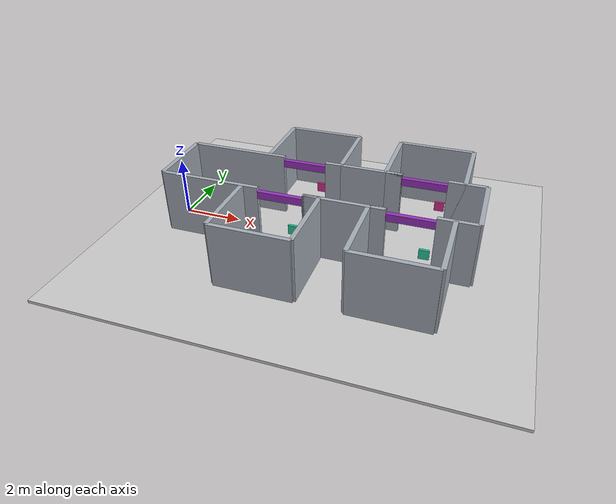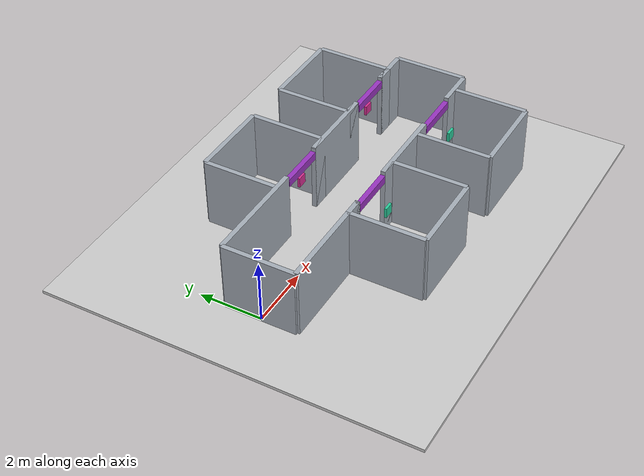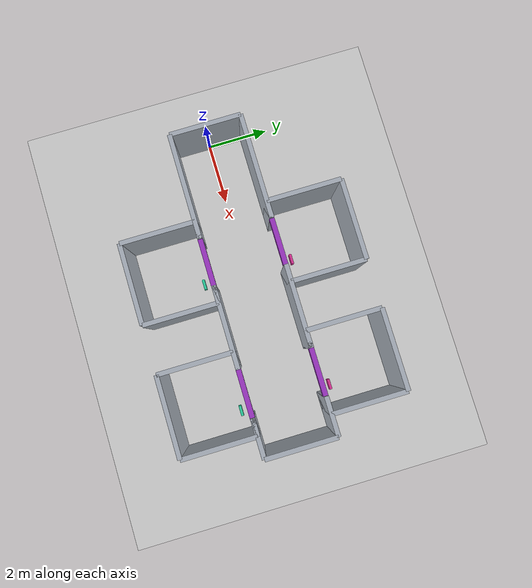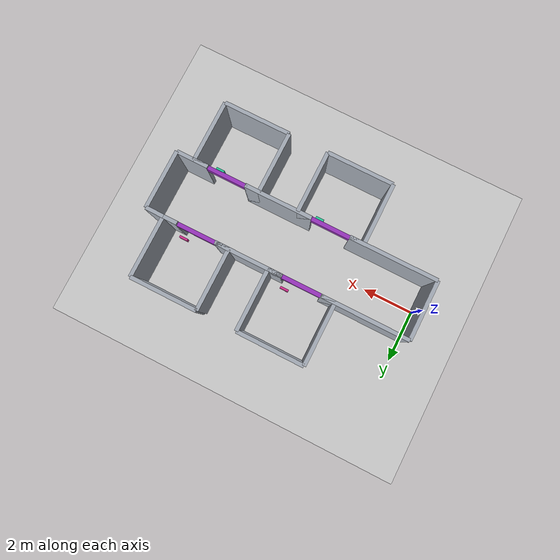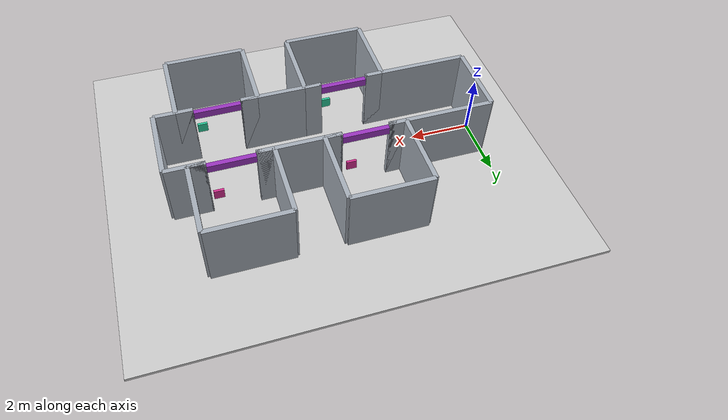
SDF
<sdf version="1.9">
  <world name="default">
    <plugin filename="gz-sim-physics-system" name="gz::sim::systems::Physics" />
    <plugin filename="gz-sim-user-commands-system" name="gz::sim::systems::UserCommands" />
    <plugin filename="gz-sim-sensors-system" name="gz::sim::systems::Sensors">
      <render_engine>ogre2</render_engine>
    </plugin>
    <plugin filename="gz-sim-imu-system" name="gz::sim::systems::Imu" />
    <plugin filename="gz-sim-contact-system" name="gz::sim::systems::Contact" />
    <physics name="3ms" type="ode">
      <max_step_size>0.003</max_step_size>
      <real_time_factor>1</real_time_factor>
    </physics>
    <light name="sun" type="directional">
      <pose>0 0 10 0 0 0</pose>
      <diffuse>0.9 0.9 0.9 1</diffuse>
      <direction>-0.5 0.1 -0.9</direction>
    </light>
    <model name="ground_plane">
      <static>true</static>
      <pose>5.15 0 -0.05 0 0 0</pose>
      <link name="body">
        <collision name="collision">
          <geometry>
            <box>
              <size>14.3 12 0.1</size>
            </box>
          </geometry>
        </collision>
        <visual name="visual">
          <geometry>
            <box>
              <size>14.3 12 0.1</size>
            </box>
          </geometry>
          <material>
            <ambient>0.8 0.8 0.8 1</ambient>
            <diffuse>0.8 0.8 0.8 1</diffuse>
          </material>
        </visual>
      </link>
    </model>
    <model name="start_wall">
      <static>true</static>
      <pose>0 0 1.1 0 0 0</pose>
      <link name="body">
        <collision name="collision">
          <geometry>
            <box>
              <size>0.15 2.3 2.2</size>
            </box>
          </geometry>
        </collision>
        <visual name="visual">
          <geometry>
            <box>
              <size>0.15 2.3 2.2</size>
            </box>
          </geometry>
          <material>
            <ambient>0.65 0.68 0.72 1</ambient>
            <diffuse>0.65 0.68 0.72 1</diffuse>
          </material>
        </visual>
      </link>
    </model>
    <model name="end_wall">
      <static>true</static>
      <pose>10.3 0 1.1 0 0 0</pose>
      <link name="body">
        <collision name="collision">
          <geometry>
            <box>
              <size>0.15 2.3 2.2</size>
            </box>
          </geometry>
        </collision>
        <visual name="visual">
          <geometry>
            <box>
              <size>0.15 2.3 2.2</size>
            </box>
          </geometry>
          <material>
            <ambient>0.65 0.68 0.72 1</ambient>
            <diffuse>0.65 0.68 0.72 1</diffuse>
          </material>
        </visual>
      </link>
    </model>
    <model name="hall_-1_1">
      <static>true</static>
      <pose>1.7000000000000002 -1.15 1.1 0 0 0</pose>
      <link name="body">
        <collision name="collision">
          <geometry>
            <box>
              <size>3.4000000000000004 0.15 2.2</size>
            </box>
          </geometry>
        </collision>
        <visual name="visual">
          <geometry>
            <box>
              <size>3.4000000000000004 0.15 2.2</size>
            </box>
          </geometry>
          <material>
            <ambient>0.65 0.68 0.72 1</ambient>
            <diffuse>0.65 0.68 0.72 1</diffuse>
          </material>
        </visual>
      </link>
    </model>
    <model name="room_-1_1_-1">
      <static>true</static>
      <pose>2.8500000000000005 -2.3499999999999996 1.1 0 0 0</pose>
      <link name="body">
        <collision name="collision">
          <geometry>
            <box>
              <size>0.15 2.4 2.2</size>
            </box>
          </geometry>
        </collision>
        <visual name="visual">
          <geometry>
            <box>
              <size>0.15 2.4 2.2</size>
            </box>
          </geometry>
          <material>
            <ambient>0.65 0.68 0.72 1</ambient>
            <diffuse>0.65 0.68 0.72 1</diffuse>
          </material>
        </visual>
      </link>
    </model>
    <model name="room_-1_1_1">
      <static>true</static>
      <pose>5.45 -2.3499999999999996 1.1 0 0 0</pose>
      <link name="body">
        <collision name="collision">
          <geometry>
            <box>
              <size>0.15 2.4 2.2</size>
            </box>
          </geometry>
        </collision>
        <visual name="visual">
          <geometry>
            <box>
              <size>0.15 2.4 2.2</size>
            </box>
          </geometry>
          <material>
            <ambient>0.65 0.68 0.72 1</ambient>
            <diffuse>0.65 0.68 0.72 1</diffuse>
          </material>
        </visual>
      </link>
    </model>
    <model name="room_end_-1_1">
      <static>true</static>
      <pose>4.15 -3.55 1.1 0 0 0</pose>
      <link name="body">
        <collision name="collision">
          <geometry>
            <box>
              <size>2.6 0.15 2.2</size>
            </box>
          </geometry>
        </collision>
        <visual name="visual">
          <geometry>
            <box>
              <size>2.6 0.15 2.2</size>
            </box>
          </geometry>
          <material>
            <ambient>0.65 0.68 0.72 1</ambient>
            <diffuse>0.65 0.68 0.72 1</diffuse>
          </material>
        </visual>
      </link>
    </model>
    <model name="jamb_-1_1_-1">
      <static>true</static>
      <pose>3.1250000000000004 -1.15 1.1 0 0 0</pose>
      <link name="body">
        <collision name="collision">
          <geometry>
            <box>
              <size>0.55 0.15 2.2</size>
            </box>
          </geometry>
        </collision>
        <visual name="visual">
          <geometry>
            <box>
              <size>0.55 0.15 2.2</size>
            </box>
          </geometry>
          <material>
            <ambient>0.65 0.68 0.72 1</ambient>
            <diffuse>0.65 0.68 0.72 1</diffuse>
          </material>
        </visual>
      </link>
    </model>
    <model name="jamb_-1_1_1">
      <static>true</static>
      <pose>5.175000000000001 -1.15 1.1 0 0 0</pose>
      <link name="body">
        <collision name="collision">
          <geometry>
            <box>
              <size>0.55 0.15 2.2</size>
            </box>
          </geometry>
        </collision>
        <visual name="visual">
          <geometry>
            <box>
              <size>0.55 0.15 2.2</size>
            </box>
          </geometry>
          <material>
            <ambient>0.65 0.68 0.72 1</ambient>
            <diffuse>0.65 0.68 0.72 1</diffuse>
          </material>
        </visual>
      </link>
    </model>
    <model name="hall_-1_2">
      <static>true</static>
      <pose>6.2250000000000005 -1.15 1.1 0 0 0</pose>
      <link name="body">
        <collision name="collision">
          <geometry>
            <box>
              <size>2.6500000000000004 0.15 2.2</size>
            </box>
          </geometry>
        </collision>
        <visual name="visual">
          <geometry>
            <box>
              <size>2.6500000000000004 0.15 2.2</size>
            </box>
          </geometry>
          <material>
            <ambient>0.65 0.68 0.72 1</ambient>
            <diffuse>0.65 0.68 0.72 1</diffuse>
          </material>
        </visual>
      </link>
    </model>
    <model name="room_-1_2_-1">
      <static>true</static>
      <pose>7.000000000000001 -2.3499999999999996 1.1 0 0 0</pose>
      <link name="body">
        <collision name="collision">
          <geometry>
            <box>
              <size>0.15 2.4 2.2</size>
            </box>
          </geometry>
        </collision>
        <visual name="visual">
          <geometry>
            <box>
              <size>0.15 2.4 2.2</size>
            </box>
          </geometry>
          <material>
            <ambient>0.65 0.68 0.72 1</ambient>
            <diffuse>0.65 0.68 0.72 1</diffuse>
          </material>
        </visual>
      </link>
    </model>
    <model name="room_-1_2_1">
      <static>true</static>
      <pose>9.600000000000001 -2.3499999999999996 1.1 0 0 0</pose>
      <link name="body">
        <collision name="collision">
          <geometry>
            <box>
              <size>0.15 2.4 2.2</size>
            </box>
          </geometry>
        </collision>
        <visual name="visual">
          <geometry>
            <box>
              <size>0.15 2.4 2.2</size>
            </box>
          </geometry>
          <material>
            <ambient>0.65 0.68 0.72 1</ambient>
            <diffuse>0.65 0.68 0.72 1</diffuse>
          </material>
        </visual>
      </link>
    </model>
    <model name="room_end_-1_2">
      <static>true</static>
      <pose>8.3 -3.55 1.1 0 0 0</pose>
      <link name="body">
        <collision name="collision">
          <geometry>
            <box>
              <size>2.6 0.15 2.2</size>
            </box>
          </geometry>
        </collision>
        <visual name="visual">
          <geometry>
            <box>
              <size>2.6 0.15 2.2</size>
            </box>
          </geometry>
          <material>
            <ambient>0.65 0.68 0.72 1</ambient>
            <diffuse>0.65 0.68 0.72 1</diffuse>
          </material>
        </visual>
      </link>
    </model>
    <model name="jamb_-1_2_-1">
      <static>true</static>
      <pose>7.275 -1.15 1.1 0 0 0</pose>
      <link name="body">
        <collision name="collision">
          <geometry>
            <box>
              <size>0.55 0.15 2.2</size>
            </box>
          </geometry>
        </collision>
        <visual name="visual">
          <geometry>
            <box>
              <size>0.55 0.15 2.2</size>
            </box>
          </geometry>
          <material>
            <ambient>0.65 0.68 0.72 1</ambient>
            <diffuse>0.65 0.68 0.72 1</diffuse>
          </material>
        </visual>
      </link>
    </model>
    <model name="jamb_-1_2_1">
      <static>true</static>
      <pose>9.325000000000001 -1.15 1.1 0 0 0</pose>
      <link name="body">
        <collision name="collision">
          <geometry>
            <box>
              <size>0.55 0.15 2.2</size>
            </box>
          </geometry>
        </collision>
        <visual name="visual">
          <geometry>
            <box>
              <size>0.55 0.15 2.2</size>
            </box>
          </geometry>
          <material>
            <ambient>0.65 0.68 0.72 1</ambient>
            <diffuse>0.65 0.68 0.72 1</diffuse>
          </material>
        </visual>
      </link>
    </model>
    <model name="hall_end_-1">
      <static>true</static>
      <pose>9.675 -1.15 1.1 0 0 0</pose>
      <link name="body">
        <collision name="collision">
          <geometry>
            <box>
              <size>1.25 0.15 2.2</size>
            </box>
          </geometry>
        </collision>
        <visual name="visual">
          <geometry>
            <box>
              <size>1.25 0.15 2.2</size>
            </box>
          </geometry>
          <material>
            <ambient>0.65 0.68 0.72 1</ambient>
            <diffuse>0.65 0.68 0.72 1</diffuse>
          </material>
        </visual>
      </link>
    </model>
    <model name="hall_1_1">
      <static>true</static>
      <pose>1.7000000000000002 1.15 1.1 0 0 0</pose>
      <link name="body">
        <collision name="collision">
          <geometry>
            <box>
              <size>3.4000000000000004 0.15 2.2</size>
            </box>
          </geometry>
        </collision>
        <visual name="visual">
          <geometry>
            <box>
              <size>3.4000000000000004 0.15 2.2</size>
            </box>
          </geometry>
          <material>
            <ambient>0.65 0.68 0.72 1</ambient>
            <diffuse>0.65 0.68 0.72 1</diffuse>
          </material>
        </visual>
      </link>
    </model>
    <model name="room_1_1_-1">
      <static>true</static>
      <pose>2.8500000000000005 2.3499999999999996 1.1 0 0 0</pose>
      <link name="body">
        <collision name="collision">
          <geometry>
            <box>
              <size>0.15 2.4 2.2</size>
            </box>
          </geometry>
        </collision>
        <visual name="visual">
          <geometry>
            <box>
              <size>0.15 2.4 2.2</size>
            </box>
          </geometry>
          <material>
            <ambient>0.65 0.68 0.72 1</ambient>
            <diffuse>0.65 0.68 0.72 1</diffuse>
          </material>
        </visual>
      </link>
    </model>
    <model name="room_1_1_1">
      <static>true</static>
      <pose>5.45 2.3499999999999996 1.1 0 0 0</pose>
      <link name="body">
        <collision name="collision">
          <geometry>
            <box>
              <size>0.15 2.4 2.2</size>
            </box>
          </geometry>
        </collision>
        <visual name="visual">
          <geometry>
            <box>
              <size>0.15 2.4 2.2</size>
            </box>
          </geometry>
          <material>
            <ambient>0.65 0.68 0.72 1</ambient>
            <diffuse>0.65 0.68 0.72 1</diffuse>
          </material>
        </visual>
      </link>
    </model>
    <model name="room_end_1_1">
      <static>true</static>
      <pose>4.15 3.55 1.1 0 0 0</pose>
      <link name="body">
        <collision name="collision">
          <geometry>
            <box>
              <size>2.6 0.15 2.2</size>
            </box>
          </geometry>
        </collision>
        <visual name="visual">
          <geometry>
            <box>
              <size>2.6 0.15 2.2</size>
            </box>
          </geometry>
          <material>
            <ambient>0.65 0.68 0.72 1</ambient>
            <diffuse>0.65 0.68 0.72 1</diffuse>
          </material>
        </visual>
      </link>
    </model>
    <model name="jamb_1_1_-1">
      <static>true</static>
      <pose>3.1250000000000004 1.15 1.1 0 0 0</pose>
      <link name="body">
        <collision name="collision">
          <geometry>
            <box>
              <size>0.55 0.15 2.2</size>
            </box>
          </geometry>
        </collision>
        <visual name="visual">
          <geometry>
            <box>
              <size>0.55 0.15 2.2</size>
            </box>
          </geometry>
          <material>
            <ambient>0.65 0.68 0.72 1</ambient>
            <diffuse>0.65 0.68 0.72 1</diffuse>
          </material>
        </visual>
      </link>
    </model>
    <model name="jamb_1_1_1">
      <static>true</static>
      <pose>5.175000000000001 1.15 1.1 0 0 0</pose>
      <link name="body">
        <collision name="collision">
          <geometry>
            <box>
              <size>0.55 0.15 2.2</size>
            </box>
          </geometry>
        </collision>
        <visual name="visual">
          <geometry>
            <box>
              <size>0.55 0.15 2.2</size>
            </box>
          </geometry>
          <material>
            <ambient>0.65 0.68 0.72 1</ambient>
            <diffuse>0.65 0.68 0.72 1</diffuse>
          </material>
        </visual>
      </link>
    </model>
    <model name="hall_1_2">
      <static>true</static>
      <pose>6.2250000000000005 1.15 1.1 0 0 0</pose>
      <link name="body">
        <collision name="collision">
          <geometry>
            <box>
              <size>2.6500000000000004 0.15 2.2</size>
            </box>
          </geometry>
        </collision>
        <visual name="visual">
          <geometry>
            <box>
              <size>2.6500000000000004 0.15 2.2</size>
            </box>
          </geometry>
          <material>
            <ambient>0.65 0.68 0.72 1</ambient>
            <diffuse>0.65 0.68 0.72 1</diffuse>
          </material>
        </visual>
      </link>
    </model>
    <model name="room_1_2_-1">
      <static>true</static>
      <pose>7.000000000000001 2.3499999999999996 1.1 0 0 0</pose>
      <link name="body">
        <collision name="collision">
          <geometry>
            <box>
              <size>0.15 2.4 2.2</size>
            </box>
          </geometry>
        </collision>
        <visual name="visual">
          <geometry>
            <box>
              <size>0.15 2.4 2.2</size>
            </box>
          </geometry>
          <material>
            <ambient>0.65 0.68 0.72 1</ambient>
            <diffuse>0.65 0.68 0.72 1</diffuse>
          </material>
        </visual>
      </link>
    </model>
    <model name="room_1_2_1">
      <static>true</static>
      <pose>9.600000000000001 2.3499999999999996 1.1 0 0 0</pose>
      <link name="body">
        <collision name="collision">
          <geometry>
            <box>
              <size>0.15 2.4 2.2</size>
            </box>
          </geometry>
        </collision>
        <visual name="visual">
          <geometry>
            <box>
              <size>0.15 2.4 2.2</size>
            </box>
          </geometry>
          <material>
            <ambient>0.65 0.68 0.72 1</ambient>
            <diffuse>0.65 0.68 0.72 1</diffuse>
          </material>
        </visual>
      </link>
    </model>
    <model name="room_end_1_2">
      <static>true</static>
      <pose>8.3 3.55 1.1 0 0 0</pose>
      <link name="body">
        <collision name="collision">
          <geometry>
            <box>
              <size>2.6 0.15 2.2</size>
            </box>
          </geometry>
        </collision>
        <visual name="visual">
          <geometry>
            <box>
              <size>2.6 0.15 2.2</size>
            </box>
          </geometry>
          <material>
            <ambient>0.65 0.68 0.72 1</ambient>
            <diffuse>0.65 0.68 0.72 1</diffuse>
          </material>
        </visual>
      </link>
    </model>
    <model name="jamb_1_2_-1">
      <static>true</static>
      <pose>7.275 1.15 1.1 0 0 0</pose>
      <link name="body">
        <collision name="collision">
          <geometry>
            <box>
              <size>0.55 0.15 2.2</size>
            </box>
          </geometry>
        </collision>
        <visual name="visual">
          <geometry>
            <box>
              <size>0.55 0.15 2.2</size>
            </box>
          </geometry>
          <material>
            <ambient>0.65 0.68 0.72 1</ambient>
            <diffuse>0.65 0.68 0.72 1</diffuse>
          </material>
        </visual>
      </link>
    </model>
    <model name="jamb_1_2_1">
      <static>true</static>
      <pose>9.325000000000001 1.15 1.1 0 0 0</pose>
      <link name="body">
        <collision name="collision">
          <geometry>
            <box>
              <size>0.55 0.15 2.2</size>
            </box>
          </geometry>
        </collision>
        <visual name="visual">
          <geometry>
            <box>
              <size>0.55 0.15 2.2</size>
            </box>
          </geometry>
          <material>
            <ambient>0.65 0.68 0.72 1</ambient>
            <diffuse>0.65 0.68 0.72 1</diffuse>
          </material>
        </visual>
      </link>
    </model>
    <model name="hall_end_1">
      <static>true</static>
      <pose>9.675 1.15 1.1 0 0 0</pose>
      <link name="body">
        <collision name="collision">
          <geometry>
            <box>
              <size>1.25 0.15 2.2</size>
            </box>
          </geometry>
        </collision>
        <visual name="visual">
          <geometry>
            <box>
              <size>1.25 0.15 2.2</size>
            </box>
          </geometry>
          <material>
            <ambient>0.65 0.68 0.72 1</ambient>
            <diffuse>0.65 0.68 0.72 1</diffuse>
          </material>
        </visual>
      </link>
    </model>
    <model name="r3geo_base_r009_right_1_lintel">
      <static>true</static>
      <pose>4.15 -1.15 1.95 0 0 0</pose>
      <link name="body">
        <collision name="collision">
          <geometry>
            <box>
              <size>1.5 0.16 0.25</size>
            </box>
          </geometry>
        </collision>
        <visual name="visual">
          <geometry>
            <box>
              <size>1.5 0.16 0.25</size>
            </box>
          </geometry>
          <material>
            <ambient>0.6 0.2 0.75 1</ambient>
            <diffuse>0.6 0.2 0.75 1</diffuse>
          </material>
        </visual>
      </link>
    </model>
    <model name="r3geo_base_r009_right_1_entrance_sign">
      <static>true</static>
      <pose>4.680000000000001 -1.45 1.05 0 0 0</pose>
      <link name="body">
        <visual name="visual">
          <geometry>
            <box>
              <size>0.32 0.08 0.32</size>
            </box>
          </geometry>
          <material>
            <ambient>0.16 0.8 0.61 1</ambient>
            <diffuse>0.16 0.8 0.61 1</diffuse>
          </material>
        </visual>
      </link>
    </model>
    <model name="r3geo_base_r009_right_2_lintel">
      <static>true</static>
      <pose>8.3 -1.15 1.95 0 0 0</pose>
      <link name="body">
        <collision name="collision">
          <geometry>
            <box>
              <size>1.5 0.16 0.25</size>
            </box>
          </geometry>
        </collision>
        <visual name="visual">
          <geometry>
            <box>
              <size>1.5 0.16 0.25</size>
            </box>
          </geometry>
          <material>
            <ambient>0.6 0.2 0.75 1</ambient>
            <diffuse>0.6 0.2 0.75 1</diffuse>
          </material>
        </visual>
      </link>
    </model>
    <model name="r3geo_base_r009_right_2_entrance_sign">
      <static>true</static>
      <pose>8.83 -1.45 1.05 0 0 0</pose>
      <link name="body">
        <visual name="visual">
          <geometry>
            <box>
              <size>0.32 0.08 0.32</size>
            </box>
          </geometry>
          <material>
            <ambient>0.16 0.8 0.61 1</ambient>
            <diffuse>0.16 0.8 0.61 1</diffuse>
          </material>
        </visual>
      </link>
    </model>
    <model name="r3geo_base_r009_left_1_lintel">
      <static>true</static>
      <pose>4.15 1.15 1.95 0 0 0</pose>
      <link name="body">
        <collision name="collision">
          <geometry>
            <box>
              <size>1.5 0.16 0.25</size>
            </box>
          </geometry>
        </collision>
        <visual name="visual">
          <geometry>
            <box>
              <size>1.5 0.16 0.25</size>
            </box>
          </geometry>
          <material>
            <ambient>0.6 0.2 0.75 1</ambient>
            <diffuse>0.6 0.2 0.75 1</diffuse>
          </material>
        </visual>
      </link>
    </model>
    <model name="r3geo_base_r009_left_1_entrance_sign">
      <static>true</static>
      <pose>4.680000000000001 1.45 1.05 0 0 0</pose>
      <link name="body">
        <visual name="visual">
          <geometry>
            <box>
              <size>0.32 0.08 0.32</size>
            </box>
          </geometry>
          <material>
            <ambient>0.84 0.18 0.57 1</ambient>
            <diffuse>0.84 0.18 0.57 1</diffuse>
          </material>
        </visual>
      </link>
    </model>
    <model name="r3geo_base_r009_left_2_lintel">
      <static>true</static>
      <pose>8.3 1.15 1.95 0 0 0</pose>
      <link name="body">
        <collision name="collision">
          <geometry>
            <box>
              <size>1.5 0.16 0.25</size>
            </box>
          </geometry>
        </collision>
        <visual name="visual">
          <geometry>
            <box>
              <size>1.5 0.16 0.25</size>
            </box>
          </geometry>
          <material>
            <ambient>0.6 0.2 0.75 1</ambient>
            <diffuse>0.6 0.2 0.75 1</diffuse>
          </material>
        </visual>
      </link>
    </model>
    <model name="r3geo_base_r009_left_2_entrance_sign">
      <static>true</static>
      <pose>8.83 1.45 1.05 0 0 0</pose>
      <link name="body">
        <visual name="visual">
          <geometry>
            <box>
              <size>0.32 0.08 0.32</size>
            </box>
          </geometry>
          <material>
            <ambient>0.84 0.18 0.57 1</ambient>
            <diffuse>0.84 0.18 0.57 1</diffuse>
          </material>
        </visual>
      </link>
    </model>
  </world>
</sdf>
